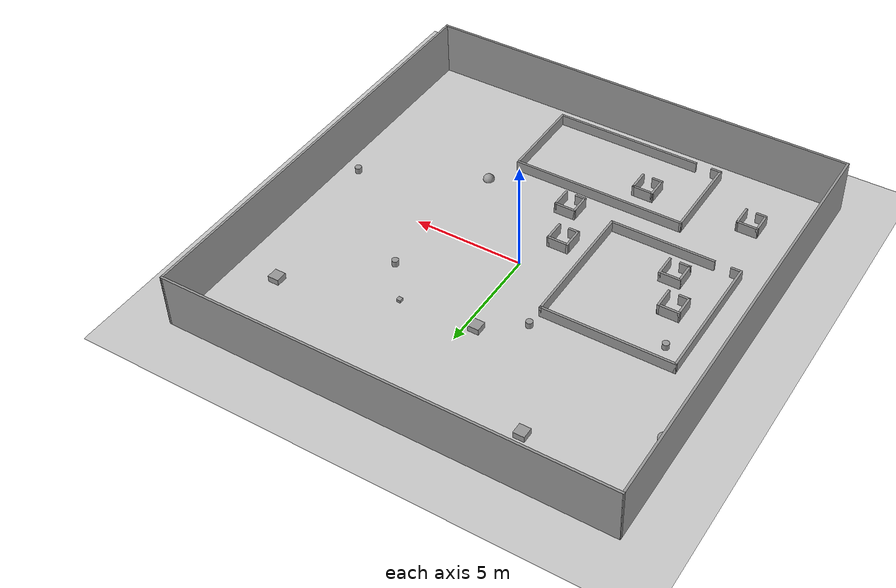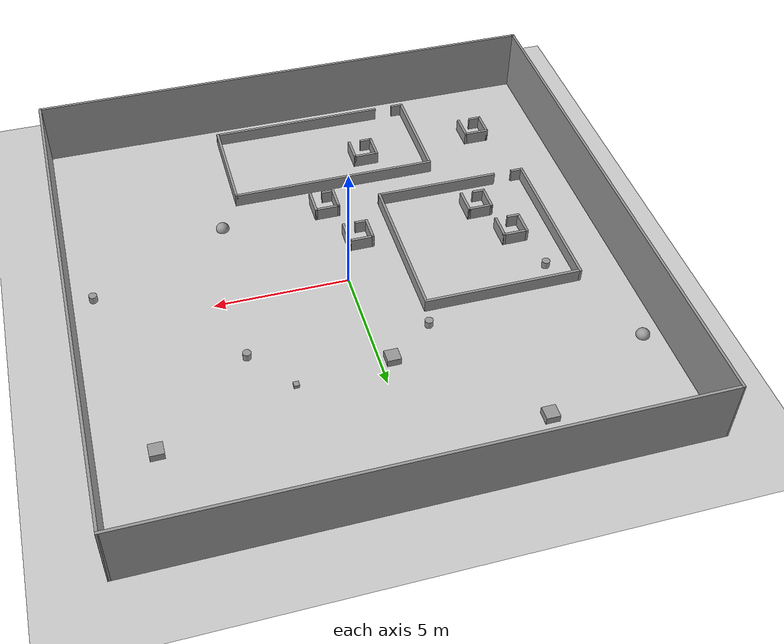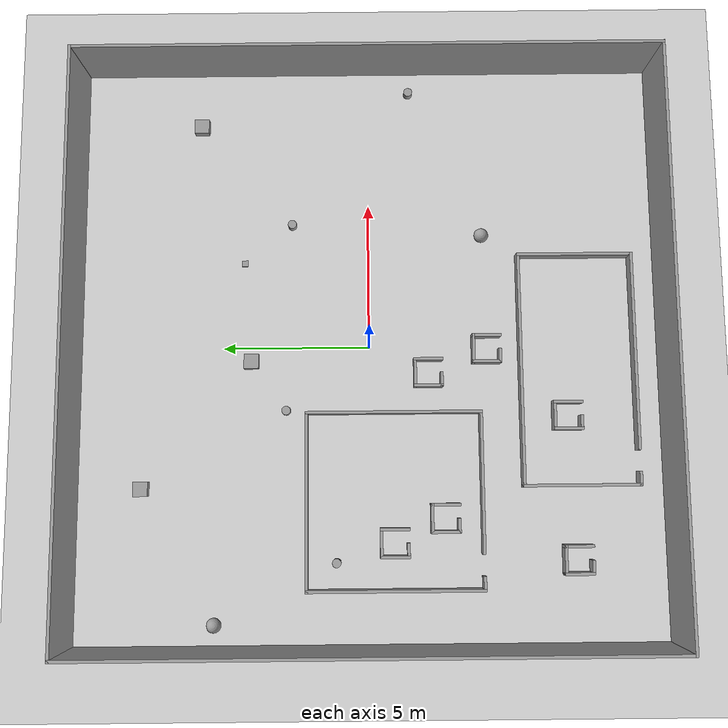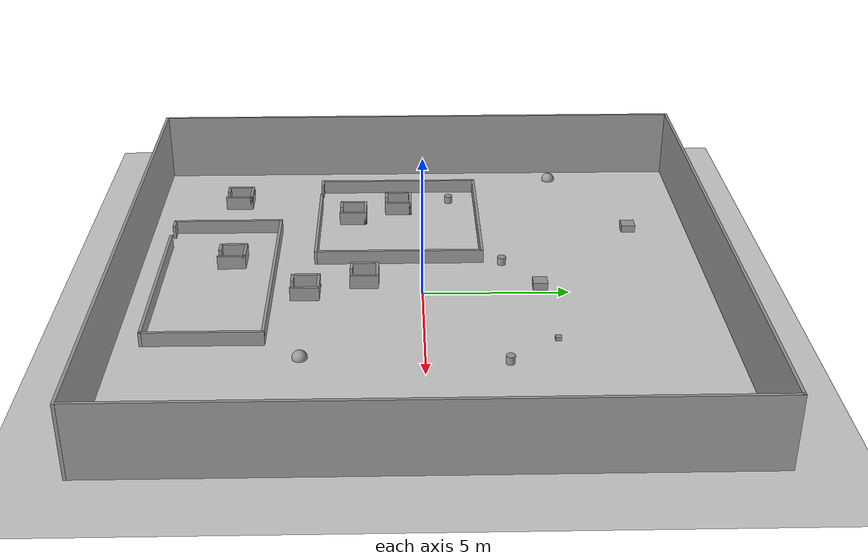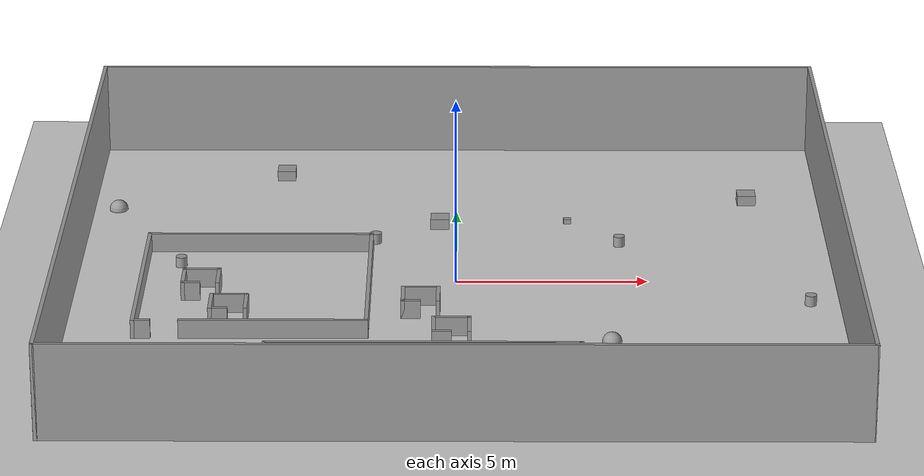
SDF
<sdf version="1.6">
 <world name="default">
  <model name="ground_plane">
   <static>1</static>
   <link name="link">
    <collision name="collision">
     <geometry><plane><normal>0 0 1</normal><size>20 20</size></plane></geometry>
     <surface>
      <contact><collide_bitmask>65535</collide_bitmask></contact>
      <friction><ode><mu>100</mu><mu2>50</mu2></ode></friction>
     </surface>
    </collision>
    <visual name="visual">
     <cast_shadows>0</cast_shadows>
     <geometry><plane><normal>0 0 1</normal><size>20 20</size></plane></geometry>
     <material>
      <script><uri>file://media/materials/scripts/gazebo.material</uri><name>Gazebo/Grey</name></script>
     </material>
    </visual>
   </link>
  </model>
  <model name="outsidewall.sdf">
   <link name="Wall_3">
    <collision name="Wall_3_Collision">
     <geometry><box><size>20 0.10 2.5</size></box></geometry>
     <pose>0 0 1.25 0 -0 0</pose>
    </collision>
    <visual name="Wall_3_Visual">
     <pose>0 0 1.25 0 -0 0</pose>
     <geometry><box><size>20 0.10 2.5</size></box></geometry>
     <material>
      <script><uri>file://media/materials/scripts/gazebo.material</uri><name>Gazebo/Grey</name></script>
      <ambient>1 1 1 1</ambient>
     </material>
     <meta><layer>0</layer></meta>
    </visual>
    <pose>0 9.95 0 0 -0 0</pose>
   </link>
   <link name="Wall_5">
    <collision name="Wall_5_Collision">
     <geometry><box><size>20 0.10 2.5</size></box></geometry>
     <pose>0 0 1.25 0 -0 0</pose>
    </collision>
    <visual name="Wall_5_Visual">
     <pose>0 0 1.25 0 -0 0</pose>
     <geometry><box><size>20 0.10 2.5</size></box></geometry>
     <material>
      <script><uri>file://media/materials/scripts/gazebo.material</uri><name>Gazebo/Grey</name></script>
      <ambient>1 1 1 1</ambient>
     </material>
     <meta><layer>0</layer></meta>
    </visual>
    <pose>-9.95 0 0 0 -0 1.5707</pose>
   </link>
   <link name="Wall_6">
    <collision name="Wall_6_Collision">
     <geometry><box><size>20 0.10 2.5</size></box></geometry>
     <pose>0 0 1.25 0 -0 0</pose>
    </collision>
    <visual name="Wall_6_Visual">
     <pose>0 0 1.25 0 -0 0</pose>
     <geometry><box><size>20 0.10 2.5</size></box></geometry>
     <material>
      <script><uri>file://media/materials/scripts/gazebo.material</uri><name>Gazebo/Grey</name></script>
      <ambient>1 1 1 1</ambient>
     </material>
     <meta><layer>0</layer></meta>
    </visual>
    <pose>0 -9.95 0 0 -0 0</pose>
   </link>
   <link name="Wall_7">
    <collision name="Wall_7_Collision">
     <geometry><box><size>20 0.10 2.5</size></box></geometry>
     <pose>0 0 1.25 0 -0 0</pose>
    </collision>
    <visual name="Wall_7_Visual">
     <pose>0 0 1.25 0 -0 0</pose>
     <geometry><box><size>20 0.10 2.5</size></box></geometry>
     <material>
      <script><uri>file://media/materials/scripts/gazebo.material</uri><name>Gazebo/Grey</name></script>
      <ambient>1 1 1 1</ambient>
     </material>
     <meta><layer>0</layer></meta>
    </visual>
    <pose>9.95 0 0 0 -0 1.5707</pose>
   </link>
   <static>1</static>
  </model>
  <model name="shape3">
   <pose>-0.8 -7.1 0 0 -0 0</pose>
   <link name="Wall_11">
    <collision name="Wall_11_Collision">
     <geometry><box><size>4 0.1 0.5</size></box></geometry>
     <pose>0 0 0.25 0 -0 0</pose>
    </collision>
    <visual name="Wall_11_Visual">
     <pose>0 0 0.25 0 -0 0</pose>
     <geometry><box><size>4 0.1 0.5</size></box></geometry>
     <material>
      <script><uri>file://media/materials/scripts/gazebo.material</uri><name>Gazebo/Grey</name></script>
      <ambient>1 1 1 1</ambient>
     </material>
     <meta><layer>0</layer></meta>
    </visual>
    <pose>-3.95 0 0 0 -0 -1.5708</pose>
   </link>
   <link name="Wall_12">
    <collision name="Wall_12_Collision">
     <geometry><box><size>0.5 0.1 0.5</size></box></geometry>
     <pose>0 0 0.25 0 -0 0</pose>
    </collision>
    <visual name="Wall_12_Visual">
     <pose>0 0 0.25 0 -0 0</pose>
     <geometry><box><size>0.5 0.1 0.5</size></box></geometry>
     <material>
      <script><uri>file://media/materials/scripts/gazebo.material</uri><name>Gazebo/Grey</name></script>
      <ambient>1 1 1 1</ambient>
     </material>
     <meta><layer>0</layer></meta>
    </visual>
    <pose>-3.75 -1.95 0 0 -0 0</pose>
   </link>
   <link name="Wall_7">
    <collision name="Wall_7_Collision">
     <geometry><box><size>8 0.1 0.5</size></box></geometry>
     <pose>0 0 0.25 0 -0 0</pose>
    </collision>
    <visual name="Wall_7_Visual">
     <pose>0 0 0.25 0 -0 0</pose>
     <geometry><box><size>8 0.1 0.5</size></box></geometry>
     <material>
      <script><uri>file://media/materials/scripts/gazebo.material</uri><name>Gazebo/Grey</name></script>
      <ambient>1 1 1 1</ambient>
     </material>
     <meta><layer>0</layer></meta>
    </visual>
    <pose>-0 1.95 0 0 -0 0</pose>
   </link>
   <link name="Wall_8">
    <collision name="Wall_8_Collision">
     <geometry><box><size>4 0.1 0.5</size></box></geometry>
     <pose>0 0 0.25 0 -0 0</pose>
    </collision>
    <visual name="Wall_8_Visual">
     <pose>0 0 0.25 0 -0 0</pose>
     <geometry><box><size>4 0.1 0.5</size></box></geometry>
     <material>
      <script><uri>file://media/materials/scripts/gazebo.material</uri><name>Gazebo/Grey</name></script>
      <ambient>1 1 1 1</ambient>
     </material>
     <meta><layer>0</layer></meta>
    </visual>
    <pose>3.95 0 0 0 -0 -1.5708</pose>
   </link>
   <link name="Wall_9">
    <collision name="Wall_9_Collision">
     <geometry><box><size>6.8 0.1 0.5</size></box></geometry>
     <pose>0 0 0.25 0 -0 0</pose>
    </collision>
    <visual name="Wall_9_Visual">
     <pose>0 0 0.25 0 -0 0</pose>
     <geometry><box><size>6.8 0.1 0.5</size></box></geometry>
     <material>
      <script><uri>file://media/materials/scripts/gazebo.material</uri><name>Gazebo/Grey</name></script>
      <ambient>1 1 1 1</ambient>
     </material>
     <meta><layer>0</layer></meta>
    </visual>
    <pose>0.6 -1.95 0 0 -0 3.14159</pose>
   </link>
   <static>1</static>
  </model>
  <model name="cylinder_d=30">
   <link name="link_0">
    <inertial>
     <mass>1</mass>
     <inertia><ixx>0.145833</ixx><ixy>0</ixy><ixz>0</ixz><iyy>0.145833</iyy><iyz>0</iyz><izz>0.125</izz></inertia>
    </inertial>
    <pose>9.15 -1.45 0 0 -0 0</pose>
    <visual name="visual">
     <geometry><cylinder><radius>0.15</radius><length>0.5</length></cylinder></geometry>
     <material>
      <lighting>1</lighting>
      <script><uri>file://media/materials/scripts/gazebo.material</uri><name>Gazebo/Grey</name></script>
      <shader type="vertex"><normal_map>__default__</normal_map></shader>
      <ambient>0.3 0.3 0.3 1</ambient>
      <diffuse>0.7 0.7 0.7 1</diffuse>
      <specular>0.01 0.01 0.01 1</specular>
      <emissive>0 0 0 1</emissive>
     </material>
    </visual>
    <collision name="collision">
     <geometry><cylinder><radius>0.15</radius><length>0.5</length></cylinder></geometry>
     <surface>
      <friction>
       <ode><mu>1</mu><mu2>1</mu2><fdir1>0 0 0</fdir1><slip1>0</slip1><slip2>0</slip2></ode>
       <torsional>
        <coefficient>1</coefficient>
        <patch_radius>0</patch_radius>
        <surface_radius>0</surface_radius>
        <use_patch_radius>1</use_patch_radius>
        <ode><slip>0</slip></ode>
       </torsional>
      </friction>
      <bounce><restitution_coefficient>0</restitution_coefficient><threshold>1e+06</threshold></bounce>
      <contact>
       <collide_without_contact>0</collide_without_contact>
       <collide_without_contact_bitmask>1</collide_without_contact_bitmask>
       <collide_bitmask>1</collide_bitmask>
       <ode>
        <soft_cfm>0</soft_cfm>
        <soft_erp>0.2</soft_erp>
        <kp>1e+13</kp>
        <kd>1</kd>
        <max_vel>0.01</max_vel>
        <min_depth>0</min_depth>
       </ode>
       <bullet>
        <split_impulse>1</split_impulse>
        <split_impulse_penetration_threshold>-0.01</split_impulse_penetration_threshold>
        <soft_cfm>0</soft_cfm>
        <soft_erp>0.2</soft_erp>
        <kp>1e+13</kp>
        <kd>1</kd>
       </bullet>
      </contact>
     </surface>
    </collision>
   </link>
   <static>0</static>
  </model>
  <model name="box_d=50">
   <link name="link_2">
    <inertial>
     <mass>1</mass>
     <inertia>
      <ixx>0.166667</ixx>
      <ixy>0</ixy>
      <ixz>0</ixz>
      <iyy>0.166667</iyy>
      <iyz>0</iyz>
      <izz>0.166667</izz>
     </inertia>
    </inertial>
    <pose>-0.45 4.05 0 0 -0 0</pose>
    <visual name="visual">
     <geometry><box><size>0.5 0.5 0.5</size></box></geometry>
     <material>
      <lighting>1</lighting>
      <script><uri>file://media/materials/scripts/gazebo.material</uri><name>Gazebo/Grey</name></script>
      <shader type="vertex"><normal_map>__default__</normal_map></shader>
      <ambient>0.3 0.3 0.3 1</ambient>
      <diffuse>0.7 0.7 0.7 1</diffuse>
      <specular>0.01 0.01 0.01 1</specular>
      <emissive>0 0 0 1</emissive>
     </material>
    </visual>
    <collision name="collision">
     <geometry><box><size>0.5 0.5 0.5</size></box></geometry>
     <surface>
      <friction>
       <ode><mu>1</mu><mu2>1</mu2><fdir1>0 0 0</fdir1><slip1>0</slip1><slip2>0</slip2></ode>
       <torsional>
        <coefficient>1</coefficient>
        <patch_radius>0</patch_radius>
        <surface_radius>0</surface_radius>
        <use_patch_radius>1</use_patch_radius>
        <ode><slip>0</slip></ode>
       </torsional>
      </friction>
      <bounce><restitution_coefficient>0</restitution_coefficient><threshold>1e+06</threshold></bounce>
      <contact>
       <collide_without_contact>0</collide_without_contact>
       <collide_without_contact_bitmask>1</collide_without_contact_bitmask>
       <collide_bitmask>1</collide_bitmask>
       <ode>
        <soft_cfm>0</soft_cfm>
        <soft_erp>0.2</soft_erp>
        <kp>1e+13</kp>
        <kd>1</kd>
        <max_vel>0.01</max_vel>
        <min_depth>0</min_depth>
       </ode>
       <bullet>
        <split_impulse>1</split_impulse>
        <split_impulse_penetration_threshold>-0.01</split_impulse_penetration_threshold>
        <soft_cfm>0</soft_cfm>
        <soft_erp>0.2</soft_erp>
        <kp>1e+13</kp>
        <kd>1</kd>
       </bullet>
      </contact>
     </surface>
    </collision>
   </link>
   <static>0</static>
  </model>
  <model name="shape7">
   <pose>-5.2 -0.8 0 0 -0 0</pose>
   <link name="Wall_34">
    <collision name="Wall_34_Collision">
     <geometry><box><size>6 0.1 0.5</size></box></geometry>
     <pose>0 0 0.25 0 -0 0</pose>
    </collision>
    <visual name="Wall_34_Visual">
     <pose>0 0 0.25 0 -0 0</pose>
     <geometry><box><size>6 0.1 0.5</size></box></geometry>
     <material>
      <script><uri>file://media/materials/scripts/gazebo.material</uri><name>Gazebo/Grey</name></script>
      <ambient>1 1 1 1</ambient>
     </material>
     <meta><layer>0</layer></meta>
    </visual>
    <pose>0 2.95 0 0 -0 0</pose>
   </link>
   <link name="Wall_35">
    <collision name="Wall_35_Collision">
     <geometry><box><size>6 0.1 0.5</size></box></geometry>
     <pose>0 0 0.25 0 -0 0</pose>
    </collision>
    <visual name="Wall_35_Visual">
     <pose>0 0 0.25 0 -0 0</pose>
     <geometry><box><size>6 0.1 0.5</size></box></geometry>
     <material>
      <script><uri>file://media/materials/scripts/gazebo.material</uri><name>Gazebo/Grey</name></script>
      <ambient>1 1 1 1</ambient>
     </material>
     <meta><layer>0</layer></meta>
    </visual>
    <pose>2.95 0 0 0 -0 -1.5708</pose>
   </link>
   <link name="Wall_36">
    <collision name="Wall_36_Collision">
     <geometry><box><size>4.8 0.1 0.5</size></box></geometry>
     <pose>0 0 0.25 0 -0 0</pose>
    </collision>
    <visual name="Wall_36_Visual">
     <pose>0 0 0.25 0 -0 0</pose>
     <geometry><box><size>4.8 0.1 0.5</size></box></geometry>
     <material>
      <script><uri>file://media/materials/scripts/gazebo.material</uri><name>Gazebo/Grey</name></script>
      <ambient>1 1 1 1</ambient>
     </material>
     <meta><layer>0</layer></meta>
    </visual>
    <pose>0.6 -2.95 0 0 -0 3.14159</pose>
   </link>
   <link name="Wall_38">
    <collision name="Wall_38_Collision">
     <geometry><box><size>6 0.1 0.5</size></box></geometry>
     <pose>0 0 0.25 0 -0 0</pose>
    </collision>
    <visual name="Wall_38_Visual">
     <pose>0 0 0.25 0 -0 0</pose>
     <geometry><box><size>6 0.1 0.5</size></box></geometry>
     <material>
      <script><uri>file://media/materials/scripts/gazebo.material</uri><name>Gazebo/Grey</name></script>
      <ambient>1 1 1 1</ambient>
     </material>
     <meta><layer>0</layer></meta>
    </visual>
    <pose>-2.95 0 0 0 -0 -1.5708</pose>
   </link>
   <link name="Wall_39">
    <collision name="Wall_39_Collision">
     <geometry><box><size>0.5 0.1 0.5</size></box></geometry>
     <pose>0 0 0.25 0 -0 0</pose>
    </collision>
    <visual name="Wall_39_Visual">
     <pose>0 0 0.25 0 -0 0</pose>
     <geometry><box><size>0.5 0.1 0.5</size></box></geometry>
     <material>
      <script><uri>file://media/materials/scripts/gazebo.material</uri><name>Gazebo/Grey</name></script>
      <ambient>1 1 1 1</ambient>
     </material>
     <meta><layer>0</layer></meta>
    </visual>
    <pose>-2.75 -2.95 0 0 -0 0</pose>
   </link>
   <static>1</static>
  </model>
  <model name="box_d=20">
   <link name="link_2">
    <inertial>
     <mass>1</mass>
     <inertia>
      <ixx>0.166667</ixx>
      <ixy>0</ixy>
      <ixz>0</ixz>
      <iyy>0.166667</iyy>
      <iyz>0</iyz>
      <izz>0.166667</izz>
     </inertia>
    </inertial>
    <pose>3 4.3 0 0 -0 0</pose>
    <visual name="visual">
     <geometry><box><size>0.2 0.2 0.2</size></box></geometry>
     <material>
      <lighting>1</lighting>
      <script><uri>file://media/materials/scripts/gazebo.material</uri><name>Gazebo/Grey</name></script>
      <shader type="vertex"><normal_map>__default__</normal_map></shader>
      <ambient>0.3 0.3 0.3 1</ambient>
      <diffuse>0.7 0.7 0.7 1</diffuse>
      <specular>0.01 0.01 0.01 1</specular>
      <emissive>0 0 0 1</emissive>
     </material>
    </visual>
    <collision name="collision">
     <geometry><box><size>0.2 0.2 0.2</size></box></geometry>
     <surface>
      <friction>
       <ode><mu>1</mu><mu2>1</mu2><fdir1>0 0 0</fdir1><slip1>0</slip1><slip2>0</slip2></ode>
       <torsional>
        <coefficient>1</coefficient>
        <patch_radius>0</patch_radius>
        <surface_radius>0</surface_radius>
        <use_patch_radius>1</use_patch_radius>
        <ode><slip>0</slip></ode>
       </torsional>
      </friction>
      <bounce><restitution_coefficient>0</restitution_coefficient><threshold>1e+06</threshold></bounce>
      <contact>
       <collide_without_contact>0</collide_without_contact>
       <collide_without_contact_bitmask>1</collide_without_contact_bitmask>
       <collide_bitmask>1</collide_bitmask>
       <ode>
        <soft_cfm>0</soft_cfm>
        <soft_erp>0.2</soft_erp>
        <kp>1e+13</kp>
        <kd>1</kd>
        <max_vel>0.01</max_vel>
        <min_depth>0</min_depth>
       </ode>
       <bullet>
        <split_impulse>1</split_impulse>
        <split_impulse_penetration_threshold>-0.01</split_impulse_penetration_threshold>
        <soft_cfm>0</soft_cfm>
        <soft_erp>0.2</soft_erp>
        <kp>1e+13</kp>
        <kd>1</kd>
       </bullet>
      </contact>
     </surface>
    </collision>
   </link>
   <static>0</static>
  </model>
  <model name="box_d=50">
   <link name="link_2">
    <inertial>
     <mass>1</mass>
     <inertia>
      <ixx>0.166667</ixx>
      <ixy>0</ixy>
      <ixz>0</ixz>
      <iyy>0.166667</iyy>
      <iyz>0</iyz>
      <izz>0.166667</izz>
     </inertia>
    </inertial>
    <pose>7.95 5.85 0 0 -0 0</pose>
    <visual name="visual">
     <geometry><box><size>0.5 0.5 0.5</size></box></geometry>
     <material>
      <lighting>1</lighting>
      <script><uri>file://media/materials/scripts/gazebo.material</uri><name>Gazebo/Grey</name></script>
      <shader type="vertex"><normal_map>__default__</normal_map></shader>
      <ambient>0.3 0.3 0.3 1</ambient>
      <diffuse>0.7 0.7 0.7 1</diffuse>
      <specular>0.01 0.01 0.01 1</specular>
      <emissive>0 0 0 1</emissive>
     </material>
    </visual>
    <collision name="collision">
     <geometry><box><size>0.5 0.5 0.5</size></box></geometry>
     <surface>
      <friction>
       <ode><mu>1</mu><mu2>1</mu2><fdir1>0 0 0</fdir1><slip1>0</slip1><slip2>0</slip2></ode>
       <torsional>
        <coefficient>1</coefficient>
        <patch_radius>0</patch_radius>
        <surface_radius>0</surface_radius>
        <use_patch_radius>1</use_patch_radius>
        <ode><slip>0</slip></ode>
       </torsional>
      </friction>
      <bounce><restitution_coefficient>0</restitution_coefficient><threshold>1e+06</threshold></bounce>
      <contact>
       <collide_without_contact>0</collide_without_contact>
       <collide_without_contact_bitmask>1</collide_without_contact_bitmask>
       <collide_bitmask>1</collide_bitmask>
       <ode>
        <soft_cfm>0</soft_cfm>
        <soft_erp>0.2</soft_erp>
        <kp>1e+13</kp>
        <kd>1</kd>
        <max_vel>0.01</max_vel>
        <min_depth>0</min_depth>
       </ode>
       <bullet>
        <split_impulse>1</split_impulse>
        <split_impulse_penetration_threshold>-0.01</split_impulse_penetration_threshold>
        <soft_cfm>0</soft_cfm>
        <soft_erp>0.2</soft_erp>
        <kp>1e+13</kp>
        <kd>1</kd>
       </bullet>
      </contact>
     </surface>
    </collision>
   </link>
   <static>0</static>
  </model>
  <model name="ball_d=50">
   <link name="link_1">
    <inertial>
     <mass>1</mass>
     <inertia><ixx>0.1</ixx><ixy>0</ixy><ixz>0</ixz><iyy>0.1</iyy><iyz>0</iyz><izz>0.1</izz></inertia>
    </inertial>
    <pose>-9.25 5.25 0 0 -0 0</pose>
    <visual name="visual">
     <geometry><sphere><radius>0.25</radius></sphere></geometry>
     <material>
      <lighting>1</lighting>
      <script><uri>file://media/materials/scripts/gazebo.material</uri><name>Gazebo/Grey</name></script>
      <shader type="vertex"><normal_map>__default__</normal_map></shader>
      <ambient>0.3 0.3 0.3 1</ambient>
      <diffuse>0.7 0.7 0.7 1</diffuse>
      <specular>0.01 0.01 0.01 1</specular>
      <emissive>0 0 0 1</emissive>
     </material>
    </visual>
    <collision name="collision">
     <geometry><sphere><radius>0.25</radius></sphere></geometry>
     <surface>
      <friction>
       <ode><mu>1</mu><mu2>1</mu2><fdir1>0 0 0</fdir1><slip1>0</slip1><slip2>0</slip2></ode>
       <torsional>
        <coefficient>1</coefficient>
        <patch_radius>0</patch_radius>
        <surface_radius>0</surface_radius>
        <use_patch_radius>1</use_patch_radius>
        <ode><slip>0</slip></ode>
       </torsional>
      </friction>
      <bounce><restitution_coefficient>0</restitution_coefficient><threshold>1e+06</threshold></bounce>
      <contact>
       <collide_without_contact>0</collide_without_contact>
       <collide_without_contact_bitmask>1</collide_without_contact_bitmask>
       <collide_bitmask>1</collide_bitmask>
       <ode>
        <soft_cfm>0</soft_cfm>
        <soft_erp>0.2</soft_erp>
        <kp>1e+13</kp>
        <kd>1</kd>
        <max_vel>0.01</max_vel>
        <min_depth>0</min_depth>
       </ode>
       <bullet>
        <split_impulse>1</split_impulse>
        <split_impulse_penetration_threshold>-0.01</split_impulse_penetration_threshold>
        <soft_cfm>0</soft_cfm>
        <soft_erp>0.2</soft_erp>
        <kp>1e+13</kp>
        <kd>1</kd>
       </bullet>
      </contact>
     </surface>
    </collision>
   </link>
   <static>0</static>
  </model>
  <model name="shape4">
   <pose>-0.1 -4 0 0 -0 0</pose>
   <link name="Wall_14">
    <collision name="Wall_14_Collision">
     <geometry><box><size>1 0.1 0.5</size></box></geometry>
     <pose>0 0 0.25 0 -0 0</pose>
    </collision>
    <visual name="Wall_14_Visual">
     <pose>0 0 0.25 0 -0 0</pose>
     <geometry><box><size>1 0.1 0.5</size></box></geometry>
     <material>
      <script><uri>file://media/materials/scripts/gazebo.material</uri><name>Gazebo/Grey</name></script>
      <ambient>1 1 1 1</ambient>
     </material>
     <meta><layer>0</layer></meta>
    </visual>
    <pose>-0 0.45 0 0 -0 0</pose>
   </link>
   <link name="Wall_15">
    <collision name="Wall_15_Collision">
     <geometry><box><size>1 0.1 0.5</size></box></geometry>
     <pose>0 0 0.25 0 -0 0</pose>
    </collision>
    <visual name="Wall_15_Visual">
     <pose>0 0 0.25 0 -0 0</pose>
     <geometry><box><size>1 0.1 0.5</size></box></geometry>
     <material>
      <script><uri>file://media/materials/scripts/gazebo.material</uri><name>Gazebo/Grey</name></script>
      <ambient>1 1 1 1</ambient>
     </material>
     <meta><layer>0</layer></meta>
    </visual>
    <pose>0.45 -0 0 0 -0 -1.5708</pose>
   </link>
   <link name="Wall_17">
    <collision name="Wall_17_Collision">
     <geometry><box><size>1 0.1 0.5</size></box></geometry>
     <pose>0 0 0.25 0 -0 0</pose>
    </collision>
    <visual name="Wall_17_Visual">
     <pose>0 0 0.25 0 -0 0</pose>
     <geometry><box><size>1 0.1 0.5</size></box></geometry>
     <material>
      <script><uri>file://media/materials/scripts/gazebo.material</uri><name>Gazebo/Grey</name></script>
      <ambient>1 1 1 1</ambient>
     </material>
     <meta><layer>0</layer></meta>
    </visual>
    <pose>-0.45 -0 0 0 -0 -1.5708</pose>
   </link>
   <link name="Wall_18">
    <collision name="Wall_18_Collision">
     <geometry><box><size>0.5 0.1 0.5</size></box></geometry>
     <pose>0 0 0.25 0 -0 0</pose>
    </collision>
    <visual name="Wall_18_Visual">
     <pose>0 0 0.25 0 -0 0</pose>
     <geometry><box><size>0.5 0.1 0.5</size></box></geometry>
     <material>
      <script><uri>file://media/materials/scripts/gazebo.material</uri><name>Gazebo/Grey</name></script>
      <ambient>1 1 1 1</ambient>
     </material>
     <meta><layer>0</layer></meta>
    </visual>
    <pose>-0.25 -0.45 0 0 -0 0</pose>
   </link>
   <static>1</static>
  </model>
  <model name="cylinder_d=30">
   <link name="link_0">
    <inertial>
     <mass>1</mass>
     <inertia><ixx>0.145833</ixx><ixy>0</ixy><ixz>0</ixz><iyy>0.145833</iyy><iyz>0</iyz><izz>0.125</izz></inertia>
    </inertial>
    <pose>-2.15 2.85 0 0 -0 0</pose>
    <visual name="visual">
     <geometry><cylinder><radius>0.15</radius><length>0.5</length></cylinder></geometry>
     <material>
      <lighting>1</lighting>
      <script><uri>file://media/materials/scripts/gazebo.material</uri><name>Gazebo/Grey</name></script>
      <shader type="vertex"><normal_map>__default__</normal_map></shader>
      <ambient>0.3 0.3 0.3 1</ambient>
      <diffuse>0.7 0.7 0.7 1</diffuse>
      <specular>0.01 0.01 0.01 1</specular>
      <emissive>0 0 0 1</emissive>
     </material>
    </visual>
    <collision name="collision">
     <geometry><cylinder><radius>0.15</radius><length>0.5</length></cylinder></geometry>
     <surface>
      <friction>
       <ode><mu>1</mu><mu2>1</mu2><fdir1>0 0 0</fdir1><slip1>0</slip1><slip2>0</slip2></ode>
       <torsional>
        <coefficient>1</coefficient>
        <patch_radius>0</patch_radius>
        <surface_radius>0</surface_radius>
        <use_patch_radius>1</use_patch_radius>
        <ode><slip>0</slip></ode>
       </torsional>
      </friction>
      <bounce><restitution_coefficient>0</restitution_coefficient><threshold>1e+06</threshold></bounce>
      <contact>
       <collide_without_contact>0</collide_without_contact>
       <collide_without_contact_bitmask>1</collide_without_contact_bitmask>
       <collide_bitmask>1</collide_bitmask>
       <ode>
        <soft_cfm>0</soft_cfm>
        <soft_erp>0.2</soft_erp>
        <kp>1e+13</kp>
        <kd>1</kd>
        <max_vel>0.01</max_vel>
        <min_depth>0</min_depth>
       </ode>
       <bullet>
        <split_impulse>1</split_impulse>
        <split_impulse_penetration_threshold>-0.01</split_impulse_penetration_threshold>
        <soft_cfm>0</soft_cfm>
        <soft_erp>0.2</soft_erp>
        <kp>1e+13</kp>
        <kd>1</kd>
       </bullet>
      </contact>
     </surface>
    </collision>
   </link>
   <static>0</static>
  </model>
  <model name="cylinder_d=30">
   <link name="link_0">
    <inertial>
     <mass>1</mass>
     <inertia><ixx>0.145833</ixx><ixy>0</ixy><ixz>0</ixz><iyy>0.145833</iyy><iyz>0</iyz><izz>0.125</izz></inertia>
    </inertial>
    <pose>4.35 2.65 0 0 -0 0</pose>
    <visual name="visual">
     <geometry><cylinder><radius>0.15</radius><length>0.5</length></cylinder></geometry>
     <material>
      <lighting>1</lighting>
      <script><uri>file://media/materials/scripts/gazebo.material</uri><name>Gazebo/Grey</name></script>
      <shader type="vertex"><normal_map>__default__</normal_map></shader>
      <ambient>0.3 0.3 0.3 1</ambient>
      <diffuse>0.7 0.7 0.7 1</diffuse>
      <specular>0.01 0.01 0.01 1</specular>
      <emissive>0 0 0 1</emissive>
     </material>
    </visual>
    <collision name="collision">
     <geometry><cylinder><radius>0.15</radius><length>0.5</length></cylinder></geometry>
     <surface>
      <friction>
       <ode><mu>1</mu><mu2>1</mu2><fdir1>0 0 0</fdir1><slip1>0</slip1><slip2>0</slip2></ode>
       <torsional>
        <coefficient>1</coefficient>
        <patch_radius>0</patch_radius>
        <surface_radius>0</surface_radius>
        <use_patch_radius>1</use_patch_radius>
        <ode><slip>0</slip></ode>
       </torsional>
      </friction>
      <bounce><restitution_coefficient>0</restitution_coefficient><threshold>1e+06</threshold></bounce>
      <contact>
       <collide_without_contact>0</collide_without_contact>
       <collide_without_contact_bitmask>1</collide_without_contact_bitmask>
       <collide_bitmask>1</collide_bitmask>
       <ode>
        <soft_cfm>0</soft_cfm>
        <soft_erp>0.2</soft_erp>
        <kp>1e+13</kp>
        <kd>1</kd>
        <max_vel>0.01</max_vel>
        <min_depth>0</min_depth>
       </ode>
       <bullet>
        <split_impulse>1</split_impulse>
        <split_impulse_penetration_threshold>-0.01</split_impulse_penetration_threshold>
        <soft_cfm>0</soft_cfm>
        <soft_erp>0.2</soft_erp>
        <kp>1e+13</kp>
        <kd>1</kd>
       </bullet>
      </contact>
     </surface>
    </collision>
   </link>
   <static>0</static>
  </model>
  <model name="shape4">
   <pose>-0.9 -2 0 0 -0 0</pose>
   <link name="Wall_14">
    <collision name="Wall_14_Collision">
     <geometry><box><size>1 0.1 0.5</size></box></geometry>
     <pose>0 0 0.25 0 -0 0</pose>
    </collision>
    <visual name="Wall_14_Visual">
     <pose>0 0 0.25 0 -0 0</pose>
     <geometry><box><size>1 0.1 0.5</size></box></geometry>
     <material>
      <script><uri>file://media/materials/scripts/gazebo.material</uri><name>Gazebo/Grey</name></script>
      <ambient>1 1 1 1</ambient>
     </material>
     <meta><layer>0</layer></meta>
    </visual>
    <pose>-0 0.45 0 0 -0 0</pose>
   </link>
   <link name="Wall_15">
    <collision name="Wall_15_Collision">
     <geometry><box><size>1 0.1 0.5</size></box></geometry>
     <pose>0 0 0.25 0 -0 0</pose>
    </collision>
    <visual name="Wall_15_Visual">
     <pose>0 0 0.25 0 -0 0</pose>
     <geometry><box><size>1 0.1 0.5</size></box></geometry>
     <material>
      <script><uri>file://media/materials/scripts/gazebo.material</uri><name>Gazebo/Grey</name></script>
      <ambient>1 1 1 1</ambient>
     </material>
     <meta><layer>0</layer></meta>
    </visual>
    <pose>0.45 -0 0 0 -0 -1.5708</pose>
   </link>
   <link name="Wall_17">
    <collision name="Wall_17_Collision">
     <geometry><box><size>1 0.1 0.5</size></box></geometry>
     <pose>0 0 0.25 0 -0 0</pose>
    </collision>
    <visual name="Wall_17_Visual">
     <pose>0 0 0.25 0 -0 0</pose>
     <geometry><box><size>1 0.1 0.5</size></box></geometry>
     <material>
      <script><uri>file://media/materials/scripts/gazebo.material</uri><name>Gazebo/Grey</name></script>
      <ambient>1 1 1 1</ambient>
     </material>
     <meta><layer>0</layer></meta>
    </visual>
    <pose>-0.45 -0 0 0 -0 -1.5708</pose>
   </link>
   <link name="Wall_18">
    <collision name="Wall_18_Collision">
     <geometry><box><size>0.5 0.1 0.5</size></box></geometry>
     <pose>0 0 0.25 0 -0 0</pose>
    </collision>
    <visual name="Wall_18_Visual">
     <pose>0 0 0.25 0 -0 0</pose>
     <geometry><box><size>0.5 0.1 0.5</size></box></geometry>
     <material>
      <script><uri>file://media/materials/scripts/gazebo.material</uri><name>Gazebo/Grey</name></script>
      <ambient>1 1 1 1</ambient>
     </material>
     <meta><layer>0</layer></meta>
    </visual>
    <pose>-0.25 -0.45 0 0 -0 0</pose>
   </link>
   <static>1</static>
  </model>
  <model name="ball_d=50">
   <link name="link_1">
    <inertial>
     <mass>1</mass>
     <inertia><ixx>0.1</ixx><ixy>0</ixy><ixz>0</ixz><iyy>0.1</iyy><iyz>0</iyz><izz>0.1</izz></inertia>
    </inertial>
    <pose>3.95 -3.95 0 0 -0 0</pose>
    <visual name="visual">
     <geometry><sphere><radius>0.25</radius></sphere></geometry>
     <material>
      <lighting>1</lighting>
      <script><uri>file://media/materials/scripts/gazebo.material</uri><name>Gazebo/Grey</name></script>
      <shader type="vertex"><normal_map>__default__</normal_map></shader>
      <ambient>0.3 0.3 0.3 1</ambient>
      <diffuse>0.7 0.7 0.7 1</diffuse>
      <specular>0.01 0.01 0.01 1</specular>
      <emissive>0 0 0 1</emissive>
     </material>
    </visual>
    <collision name="collision">
     <geometry><sphere><radius>0.25</radius></sphere></geometry>
     <surface>
      <friction>
       <ode><mu>1</mu><mu2>1</mu2><fdir1>0 0 0</fdir1><slip1>0</slip1><slip2>0</slip2></ode>
       <torsional>
        <coefficient>1</coefficient>
        <patch_radius>0</patch_radius>
        <surface_radius>0</surface_radius>
        <use_patch_radius>1</use_patch_radius>
        <ode><slip>0</slip></ode>
       </torsional>
      </friction>
      <bounce><restitution_coefficient>0</restitution_coefficient><threshold>1e+06</threshold></bounce>
      <contact>
       <collide_without_contact>0</collide_without_contact>
       <collide_without_contact_bitmask>1</collide_without_contact_bitmask>
       <collide_bitmask>1</collide_bitmask>
       <ode>
        <soft_cfm>0</soft_cfm>
        <soft_erp>0.2</soft_erp>
        <kp>1e+13</kp>
        <kd>1</kd>
        <max_vel>0.01</max_vel>
        <min_depth>0</min_depth>
       </ode>
       <bullet>
        <split_impulse>1</split_impulse>
        <split_impulse_penetration_threshold>-0.01</split_impulse_penetration_threshold>
        <soft_cfm>0</soft_cfm>
        <soft_erp>0.2</soft_erp>
        <kp>1e+13</kp>
        <kd>1</kd>
       </bullet>
      </contact>
     </surface>
    </collision>
   </link>
   <static>0</static>
  </model>
  <model name="box_d=50">
   <link name="link_2">
    <inertial>
     <mass>1</mass>
     <inertia>
      <ixx>0.166667</ixx>
      <ixy>0</ixy>
      <ixz>0</ixz>
      <iyy>0.166667</iyy>
      <iyz>0</iyz>
      <izz>0.166667</izz>
     </inertia>
    </inertial>
    <pose>-4.75 7.75 0 0 -0 0</pose>
    <visual name="visual">
     <geometry><box><size>0.5 0.5 0.5</size></box></geometry>
     <material>
      <lighting>1</lighting>
      <script><uri>file://media/materials/scripts/gazebo.material</uri><name>Gazebo/Grey</name></script>
      <shader type="vertex"><normal_map>__default__</normal_map></shader>
      <ambient>0.3 0.3 0.3 1</ambient>
      <diffuse>0.7 0.7 0.7 1</diffuse>
      <specular>0.01 0.01 0.01 1</specular>
      <emissive>0 0 0 1</emissive>
     </material>
    </visual>
    <collision name="collision">
     <geometry><box><size>0.5 0.5 0.5</size></box></geometry>
     <surface>
      <friction>
       <ode><mu>1</mu><mu2>1</mu2><fdir1>0 0 0</fdir1><slip1>0</slip1><slip2>0</slip2></ode>
       <torsional>
        <coefficient>1</coefficient>
        <patch_radius>0</patch_radius>
        <surface_radius>0</surface_radius>
        <use_patch_radius>1</use_patch_radius>
        <ode><slip>0</slip></ode>
       </torsional>
      </friction>
      <bounce><restitution_coefficient>0</restitution_coefficient><threshold>1e+06</threshold></bounce>
      <contact>
       <collide_without_contact>0</collide_without_contact>
       <collide_without_contact_bitmask>1</collide_without_contact_bitmask>
       <collide_bitmask>1</collide_bitmask>
       <ode>
        <soft_cfm>0</soft_cfm>
        <soft_erp>0.2</soft_erp>
        <kp>1e+13</kp>
        <kd>1</kd>
        <max_vel>0.01</max_vel>
        <min_depth>0</min_depth>
       </ode>
       <bullet>
        <split_impulse>1</split_impulse>
        <split_impulse_penetration_threshold>-0.01</split_impulse_penetration_threshold>
        <soft_cfm>0</soft_cfm>
        <soft_erp>0.2</soft_erp>
        <kp>1e+13</kp>
        <kd>1</kd>
       </bullet>
      </contact>
     </surface>
    </collision>
   </link>
   <static>0</static>
  </model>
  <model name="cylinder_d=30">
   <link name="link_0">
    <inertial>
     <mass>1</mass>
     <inertia><ixx>0.145833</ixx><ixy>0</ixy><ixz>0</ixz><iyy>0.145833</iyy><iyz>0</iyz><izz>0.125</izz></inertia>
    </inertial>
    <pose>-7.25 1.15 0 0 -0 0</pose>
    <visual name="visual">
     <geometry><cylinder><radius>0.15</radius><length>0.5</length></cylinder></geometry>
     <material>
      <lighting>1</lighting>
      <script><uri>file://media/materials/scripts/gazebo.material</uri><name>Gazebo/Grey</name></script>
      <shader type="vertex"><normal_map>__default__</normal_map></shader>
      <ambient>0.3 0.3 0.3 1</ambient>
      <diffuse>0.7 0.7 0.7 1</diffuse>
      <specular>0.01 0.01 0.01 1</specular>
      <emissive>0 0 0 1</emissive>
     </material>
    </visual>
    <collision name="collision">
     <geometry><cylinder><radius>0.15</radius><length>0.5</length></cylinder></geometry>
     <surface>
      <friction>
       <ode><mu>1</mu><mu2>1</mu2><fdir1>0 0 0</fdir1><slip1>0</slip1><slip2>0</slip2></ode>
       <torsional>
        <coefficient>1</coefficient>
        <patch_radius>0</patch_radius>
        <surface_radius>0</surface_radius>
        <use_patch_radius>1</use_patch_radius>
        <ode><slip>0</slip></ode>
       </torsional>
      </friction>
      <bounce><restitution_coefficient>0</restitution_coefficient><threshold>1e+06</threshold></bounce>
      <contact>
       <collide_without_contact>0</collide_without_contact>
       <collide_without_contact_bitmask>1</collide_without_contact_bitmask>
       <collide_bitmask>1</collide_bitmask>
       <ode>
        <soft_cfm>0</soft_cfm>
        <soft_erp>0.2</soft_erp>
        <kp>1e+13</kp>
        <kd>1</kd>
        <max_vel>0.01</max_vel>
        <min_depth>0</min_depth>
       </ode>
       <bullet>
        <split_impulse>1</split_impulse>
        <split_impulse_penetration_threshold>-0.01</split_impulse_penetration_threshold>
        <soft_cfm>0</soft_cfm>
        <soft_erp>0.2</soft_erp>
        <kp>1e+13</kp>
        <kd>1</kd>
       </bullet>
      </contact>
     </surface>
    </collision>
   </link>
   <static>0</static>
  </model>
  <model name="shape4">
   <pose>-2.4 -6.7 0 0 -0 0</pose>
   <link name="Wall_14">
    <collision name="Wall_14_Collision">
     <geometry><box><size>1 0.1 0.5</size></box></geometry>
     <pose>0 0 0.25 0 -0 0</pose>
    </collision>
    <visual name="Wall_14_Visual">
     <pose>0 0 0.25 0 -0 0</pose>
     <geometry><box><size>1 0.1 0.5</size></box></geometry>
     <material>
      <script><uri>file://media/materials/scripts/gazebo.material</uri><name>Gazebo/Grey</name></script>
      <ambient>1 1 1 1</ambient>
     </material>
     <meta><layer>0</layer></meta>
    </visual>
    <pose>-0 0.45 0 0 -0 0</pose>
   </link>
   <link name="Wall_15">
    <collision name="Wall_15_Collision">
     <geometry><box><size>1 0.1 0.5</size></box></geometry>
     <pose>0 0 0.25 0 -0 0</pose>
    </collision>
    <visual name="Wall_15_Visual">
     <pose>0 0 0.25 0 -0 0</pose>
     <geometry><box><size>1 0.1 0.5</size></box></geometry>
     <material>
      <script><uri>file://media/materials/scripts/gazebo.material</uri><name>Gazebo/Grey</name></script>
      <ambient>1 1 1 1</ambient>
     </material>
     <meta><layer>0</layer></meta>
    </visual>
    <pose>0.45 -0 0 0 -0 -1.5708</pose>
   </link>
   <link name="Wall_17">
    <collision name="Wall_17_Collision">
     <geometry><box><size>1 0.1 0.5</size></box></geometry>
     <pose>0 0 0.25 0 -0 0</pose>
    </collision>
    <visual name="Wall_17_Visual">
     <pose>0 0 0.25 0 -0 0</pose>
     <geometry><box><size>1 0.1 0.5</size></box></geometry>
     <material>
      <script><uri>file://media/materials/scripts/gazebo.material</uri><name>Gazebo/Grey</name></script>
      <ambient>1 1 1 1</ambient>
     </material>
     <meta><layer>0</layer></meta>
    </visual>
    <pose>-0.45 -0 0 0 -0 -1.5708</pose>
   </link>
   <link name="Wall_18">
    <collision name="Wall_18_Collision">
     <geometry><box><size>0.5 0.1 0.5</size></box></geometry>
     <pose>0 0 0.25 0 -0 0</pose>
    </collision>
    <visual name="Wall_18_Visual">
     <pose>0 0 0.25 0 -0 0</pose>
     <geometry><box><size>0.5 0.1 0.5</size></box></geometry>
     <material>
      <script><uri>file://media/materials/scripts/gazebo.material</uri><name>Gazebo/Grey</name></script>
      <ambient>1 1 1 1</ambient>
     </material>
     <meta><layer>0</layer></meta>
    </visual>
    <pose>-0.25 -0.45 0 0 -0 0</pose>
   </link>
   <static>1</static>
  </model>
  <model name="shape4">
   <pose>-7.2 -6.9 0 0 -0 0</pose>
   <link name="Wall_14">
    <collision name="Wall_14_Collision">
     <geometry><box><size>1 0.1 0.5</size></box></geometry>
     <pose>0 0 0.25 0 -0 0</pose>
    </collision>
    <visual name="Wall_14_Visual">
     <pose>0 0 0.25 0 -0 0</pose>
     <geometry><box><size>1 0.1 0.5</size></box></geometry>
     <material>
      <script><uri>file://media/materials/scripts/gazebo.material</uri><name>Gazebo/Grey</name></script>
      <ambient>1 1 1 1</ambient>
     </material>
     <meta><layer>0</layer></meta>
    </visual>
    <pose>-0 0.45 0 0 -0 0</pose>
   </link>
   <link name="Wall_15">
    <collision name="Wall_15_Collision">
     <geometry><box><size>1 0.1 0.5</size></box></geometry>
     <pose>0 0 0.25 0 -0 0</pose>
    </collision>
    <visual name="Wall_15_Visual">
     <pose>0 0 0.25 0 -0 0</pose>
     <geometry><box><size>1 0.1 0.5</size></box></geometry>
     <material>
      <script><uri>file://media/materials/scripts/gazebo.material</uri><name>Gazebo/Grey</name></script>
      <ambient>1 1 1 1</ambient>
     </material>
     <meta><layer>0</layer></meta>
    </visual>
    <pose>0.45 -0 0 0 -0 -1.5708</pose>
   </link>
   <link name="Wall_17">
    <collision name="Wall_17_Collision">
     <geometry><box><size>1 0.1 0.5</size></box></geometry>
     <pose>0 0 0.25 0 -0 0</pose>
    </collision>
    <visual name="Wall_17_Visual">
     <pose>0 0 0.25 0 -0 0</pose>
     <geometry><box><size>1 0.1 0.5</size></box></geometry>
     <material>
      <script><uri>file://media/materials/scripts/gazebo.material</uri><name>Gazebo/Grey</name></script>
      <ambient>1 1 1 1</ambient>
     </material>
     <meta><layer>0</layer></meta>
    </visual>
    <pose>-0.45 -0 0 0 -0 -1.5708</pose>
   </link>
   <link name="Wall_18">
    <collision name="Wall_18_Collision">
     <geometry><box><size>0.5 0.1 0.5</size></box></geometry>
     <pose>0 0 0.25 0 -0 0</pose>
    </collision>
    <visual name="Wall_18_Visual">
     <pose>0 0 0.25 0 -0 0</pose>
     <geometry><box><size>0.5 0.1 0.5</size></box></geometry>
     <material>
      <script><uri>file://media/materials/scripts/gazebo.material</uri><name>Gazebo/Grey</name></script>
      <ambient>1 1 1 1</ambient>
     </material>
     <meta><layer>0</layer></meta>
    </visual>
    <pose>-0.25 -0.45 0 0 -0 0</pose>
   </link>
   <static>1</static>
  </model>
  <model name="shape4">
   <pose>-6.6 -0.8 0 0 -0 0</pose>
   <link name="Wall_14">
    <collision name="Wall_14_Collision">
     <geometry><box><size>1 0.1 0.5</size></box></geometry>
     <pose>0 0 0.25 0 -0 0</pose>
    </collision>
    <visual name="Wall_14_Visual">
     <pose>0 0 0.25 0 -0 0</pose>
     <geometry><box><size>1 0.1 0.5</size></box></geometry>
     <material>
      <script><uri>file://media/materials/scripts/gazebo.material</uri><name>Gazebo/Grey</name></script>
      <ambient>1 1 1 1</ambient>
     </material>
     <meta><layer>0</layer></meta>
    </visual>
    <pose>-0 0.45 0 0 -0 0</pose>
   </link>
   <link name="Wall_15">
    <collision name="Wall_15_Collision">
     <geometry><box><size>1 0.1 0.5</size></box></geometry>
     <pose>0 0 0.25 0 -0 0</pose>
    </collision>
    <visual name="Wall_15_Visual">
     <pose>0 0 0.25 0 -0 0</pose>
     <geometry><box><size>1 0.1 0.5</size></box></geometry>
     <material>
      <script><uri>file://media/materials/scripts/gazebo.material</uri><name>Gazebo/Grey</name></script>
      <ambient>1 1 1 1</ambient>
     </material>
     <meta><layer>0</layer></meta>
    </visual>
    <pose>0.45 -0 0 0 -0 -1.5708</pose>
   </link>
   <link name="Wall_17">
    <collision name="Wall_17_Collision">
     <geometry><box><size>1 0.1 0.5</size></box></geometry>
     <pose>0 0 0.25 0 -0 0</pose>
    </collision>
    <visual name="Wall_17_Visual">
     <pose>0 0 0.25 0 -0 0</pose>
     <geometry><box><size>1 0.1 0.5</size></box></geometry>
     <material>
      <script><uri>file://media/materials/scripts/gazebo.material</uri><name>Gazebo/Grey</name></script>
      <ambient>1 1 1 1</ambient>
     </material>
     <meta><layer>0</layer></meta>
    </visual>
    <pose>-0.45 -0 0 0 -0 -1.5708</pose>
   </link>
   <link name="Wall_18">
    <collision name="Wall_18_Collision">
     <geometry><box><size>0.5 0.1 0.5</size></box></geometry>
     <pose>0 0 0.25 0 -0 0</pose>
    </collision>
    <visual name="Wall_18_Visual">
     <pose>0 0 0.25 0 -0 0</pose>
     <geometry><box><size>0.5 0.1 0.5</size></box></geometry>
     <material>
      <script><uri>file://media/materials/scripts/gazebo.material</uri><name>Gazebo/Grey</name></script>
      <ambient>1 1 1 1</ambient>
     </material>
     <meta><layer>0</layer></meta>
    </visual>
    <pose>-0.25 -0.45 0 0 -0 0</pose>
   </link>
   <static>1</static>
  </model>
  <model name="shape4">
   <pose>-5.8 -2.5 0 0 -0 0</pose>
   <link name="Wall_14">
    <collision name="Wall_14_Collision">
     <geometry><box><size>1 0.1 0.5</size></box></geometry>
     <pose>0 0 0.25 0 -0 0</pose>
    </collision>
    <visual name="Wall_14_Visual">
     <pose>0 0 0.25 0 -0 0</pose>
     <geometry><box><size>1 0.1 0.5</size></box></geometry>
     <material>
      <script><uri>file://media/materials/scripts/gazebo.material</uri><name>Gazebo/Grey</name></script>
      <ambient>1 1 1 1</ambient>
     </material>
     <meta><layer>0</layer></meta>
    </visual>
    <pose>-0 0.45 0 0 -0 0</pose>
   </link>
   <link name="Wall_15">
    <collision name="Wall_15_Collision">
     <geometry><box><size>1 0.1 0.5</size></box></geometry>
     <pose>0 0 0.25 0 -0 0</pose>
    </collision>
    <visual name="Wall_15_Visual">
     <pose>0 0 0.25 0 -0 0</pose>
     <geometry><box><size>1 0.1 0.5</size></box></geometry>
     <material>
      <script><uri>file://media/materials/scripts/gazebo.material</uri><name>Gazebo/Grey</name></script>
      <ambient>1 1 1 1</ambient>
     </material>
     <meta><layer>0</layer></meta>
    </visual>
    <pose>0.45 -0 0 0 -0 -1.5708</pose>
   </link>
   <link name="Wall_17">
    <collision name="Wall_17_Collision">
     <geometry><box><size>1 0.1 0.5</size></box></geometry>
     <pose>0 0 0.25 0 -0 0</pose>
    </collision>
    <visual name="Wall_17_Visual">
     <pose>0 0 0.25 0 -0 0</pose>
     <geometry><box><size>1 0.1 0.5</size></box></geometry>
     <material>
      <script><uri>file://media/materials/scripts/gazebo.material</uri><name>Gazebo/Grey</name></script>
      <ambient>1 1 1 1</ambient>
     </material>
     <meta><layer>0</layer></meta>
    </visual>
    <pose>-0.45 -0 0 0 -0 -1.5708</pose>
   </link>
   <link name="Wall_18">
    <collision name="Wall_18_Collision">
     <geometry><box><size>0.5 0.1 0.5</size></box></geometry>
     <pose>0 0 0.25 0 -0 0</pose>
    </collision>
    <visual name="Wall_18_Visual">
     <pose>0 0 0.25 0 -0 0</pose>
     <geometry><box><size>0.5 0.1 0.5</size></box></geometry>
     <material>
      <script><uri>file://media/materials/scripts/gazebo.material</uri><name>Gazebo/Grey</name></script>
      <ambient>1 1 1 1</ambient>
     </material>
     <meta><layer>0</layer></meta>
    </visual>
    <pose>-0.25 -0.45 0 0 -0 0</pose>
   </link>
   <static>1</static>
  </model>
 </world>
</sdf>
